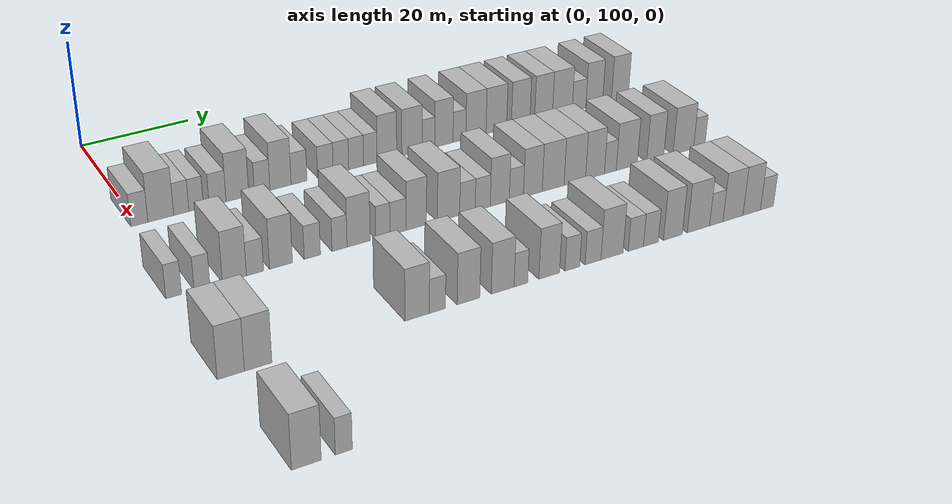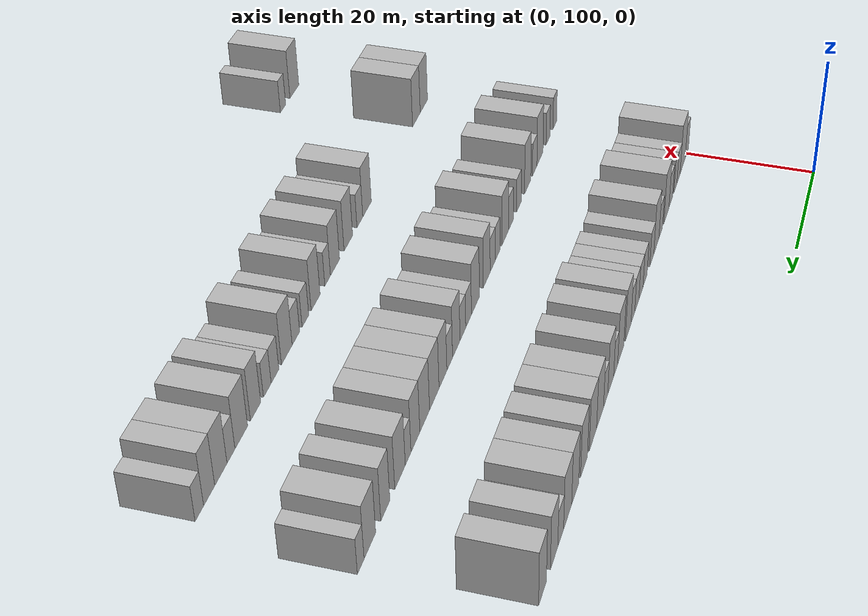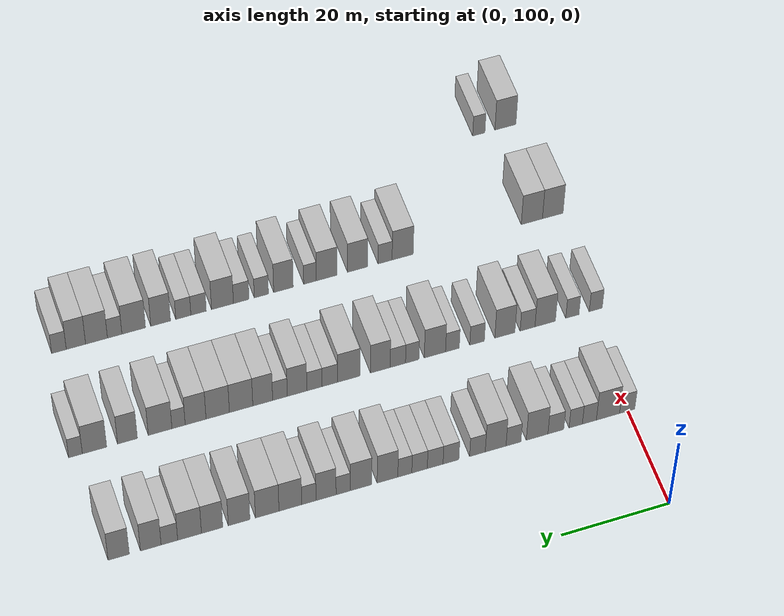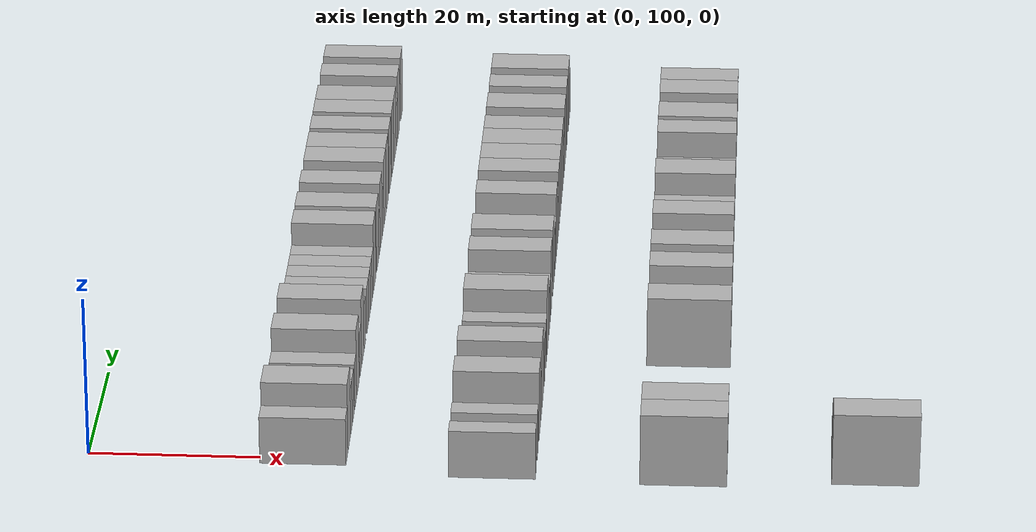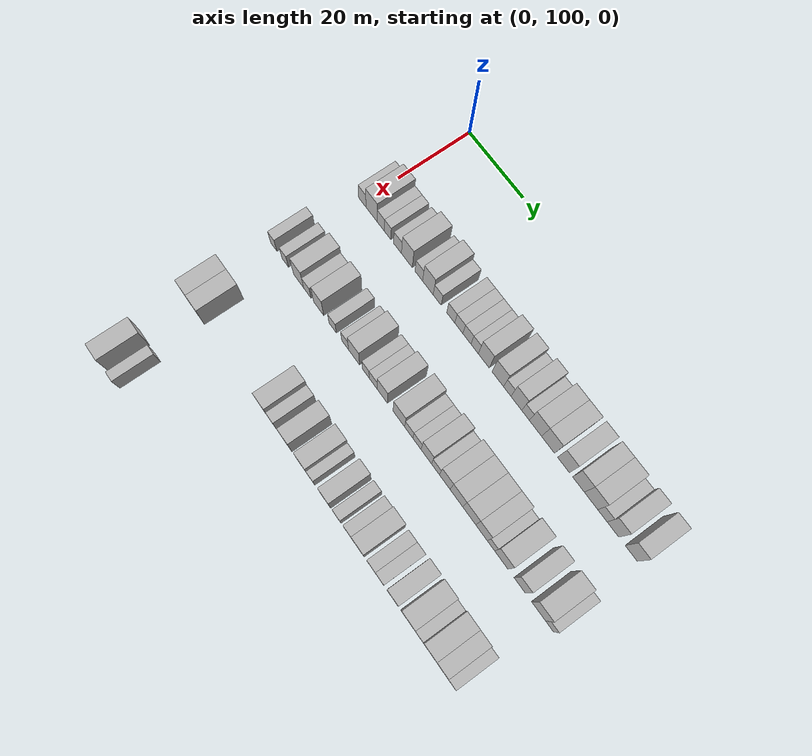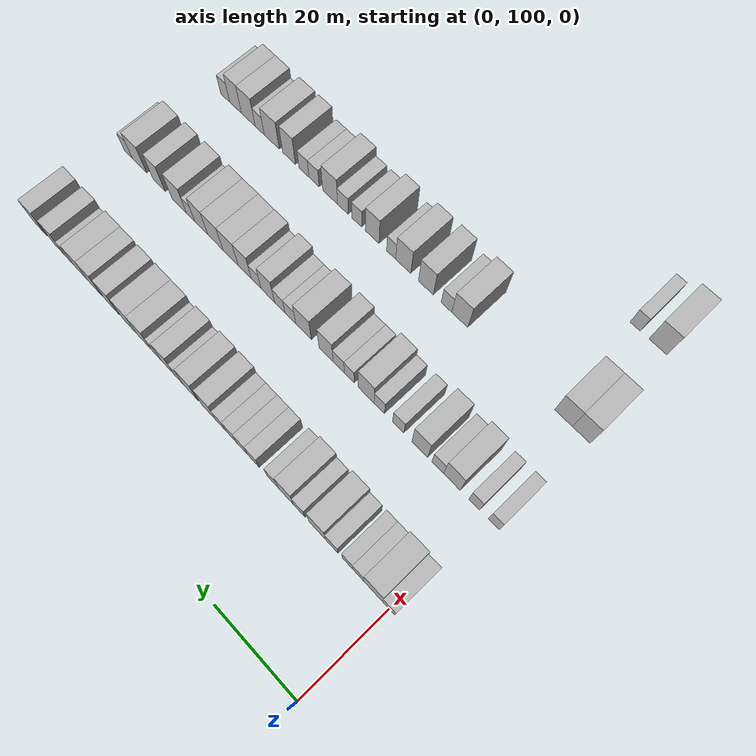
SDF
<sdf version="1.6">
 <world name="default">
  <model name="building_125">
   <static>1</static>
   <pose>25.0000 100.1451 0 0.000000 0.000000 0.000000</pose>
   <link name="link">
    <pose>0 0 3.00 0 0 0</pose>
    <collision name="collision"><geometry><box><size>10.0000 2.8913 6.0000</size></box></geometry></collision>
    <visual name="visual">
     <cast_shadows>0</cast_shadows>
     <geometry><box><size>10.0000 2.8913 6.0000</size></box></geometry>
     <material>
      <script>
       <uri>model://HANNAS_wall/materials/scripts</uri>
       <uri>model://HANNAS_wall/materials/textures</uri>
       <name>vrc/HANNAS_wall</name>
      </script>
     </material>
    </visual>
   </link>
  </model>
  <model name="building_126">
   <static>1</static>
   <pose>25.0000 103.7876 0 0.000000 0.000000 0.000000</pose>
   <link name="link">
    <pose>0 0 4.50 0 0 0</pose>
    <collision name="collision"><geometry><box><size>10.0000 4.3935 9.0000</size></box></geometry></collision>
    <visual name="visual">
     <cast_shadows>0</cast_shadows>
     <geometry><box><size>10.0000 4.3935 9.0000</size></box></geometry>
     <material>
      <script>
       <uri>model://HANNAS_wall/materials/scripts</uri>
       <uri>model://HANNAS_wall/materials/textures</uri>
       <name>vrc/HANNAS_wall</name>
      </script>
     </material>
    </visual>
   </link>
  </model>
  <model name="building_127">
   <static>1</static>
   <pose>25.0000 107.3071 0 0.000000 0.000000 0.000000</pose>
   <link name="link">
    <pose>0 0 3.00 0 0 0</pose>
    <collision name="collision"><geometry><box><size>10.0000 2.6456 6.0000</size></box></geometry></collision>
    <visual name="visual">
     <cast_shadows>0</cast_shadows>
     <geometry><box><size>10.0000 2.6456 6.0000</size></box></geometry>
     <material>
      <script>
       <uri>model://HANNAS_wall/materials/scripts</uri>
       <uri>model://HANNAS_wall/materials/textures</uri>
       <name>vrc/HANNAS_wall</name>
      </script>
     </material>
    </visual>
   </link>
  </model>
  <model name="building_128">
   <static>1</static>
   <pose>25.0000 109.8860 0 0.000000 0.000000 0.000000</pose>
   <link name="link">
    <pose>0 0 3.00 0 0 0</pose>
    <collision name="collision"><geometry><box><size>10.0000 2.5121 6.0000</size></box></geometry></collision>
    <visual name="visual">
     <cast_shadows>0</cast_shadows>
     <geometry><box><size>10.0000 2.5121 6.0000</size></box></geometry>
     <material>
      <script>
       <uri>model://HANNAS_wall/materials/scripts</uri>
       <uri>model://HANNAS_wall/materials/textures</uri>
       <name>vrc/HANNAS_wall</name>
      </script>
     </material>
    </visual>
   </link>
  </model>
  <model name="building_129">
   <static>1</static>
   <pose>25.0000 113.6311 0 0.000000 0.000000 0.000000</pose>
   <link name="link">
    <pose>0 0 3.00 0 0 0</pose>
    <collision name="collision"><geometry><box><size>10.0000 2.9781 6.0000</size></box></geometry></collision>
    <visual name="visual">
     <cast_shadows>0</cast_shadows>
     <geometry><box><size>10.0000 2.9781 6.0000</size></box></geometry>
     <material>
      <script>
       <uri>model://HANNAS_wall/materials/scripts</uri>
       <uri>model://HANNAS_wall/materials/textures</uri>
       <name>vrc/HANNAS_wall</name>
      </script>
     </material>
    </visual>
   </link>
  </model>
  <model name="building_130">
   <static>1</static>
   <pose>25.0000 117.1541 0 0.000000 0.000000 0.000000</pose>
   <link name="link">
    <pose>0 0 4.50 0 0 0</pose>
    <collision name="collision"><geometry><box><size>10.0000 4.0679 9.0000</size></box></geometry></collision>
    <visual name="visual">
     <cast_shadows>0</cast_shadows>
     <geometry><box><size>10.0000 4.0679 9.0000</size></box></geometry>
     <material>
      <script>
       <uri>model://HANNAS_wall/materials/scripts</uri>
       <uri>model://HANNAS_wall/materials/textures</uri>
       <name>vrc/HANNAS_wall</name>
      </script>
     </material>
    </visual>
   </link>
  </model>
  <model name="building_131">
   <static>1</static>
   <pose>25.0000 121.5856 0 0.000000 0.000000 0.000000</pose>
   <link name="link">
    <pose>0 0 3.00 0 0 0</pose>
    <collision name="collision"><geometry><box><size>10.0000 2.7949 6.0000</size></box></geometry></collision>
    <visual name="visual">
     <cast_shadows>0</cast_shadows>
     <geometry><box><size>10.0000 2.7949 6.0000</size></box></geometry>
     <material>
      <script>
       <uri>model://HANNAS_wall/materials/scripts</uri>
       <uri>model://HANNAS_wall/materials/textures</uri>
       <name>vrc/HANNAS_wall</name>
      </script>
     </material>
    </visual>
   </link>
  </model>
  <model name="building_132">
   <static>1</static>
   <pose>25.0000 124.9223 0 0.000000 0.000000 0.000000</pose>
   <link name="link">
    <pose>0 0 4.50 0 0 0</pose>
    <collision name="collision"><geometry><box><size>10.0000 3.8786 9.0000</size></box></geometry></collision>
    <visual name="visual">
     <cast_shadows>0</cast_shadows>
     <geometry><box><size>10.0000 3.8786 9.0000</size></box></geometry>
     <material>
      <script>
       <uri>model://HANNAS_wall/materials/scripts</uri>
       <uri>model://HANNAS_wall/materials/textures</uri>
       <name>vrc/HANNAS_wall</name>
      </script>
     </material>
    </visual>
   </link>
  </model>
  <model name="building_133">
   <static>1</static>
   <pose>25.0000 128.3234 0 0.000000 0.000000 0.000000</pose>
   <link name="link">
    <pose>0 0 3.00 0 0 0</pose>
    <collision name="collision"><geometry><box><size>10.0000 2.9236 6.0000</size></box></geometry></collision>
    <visual name="visual">
     <cast_shadows>0</cast_shadows>
     <geometry><box><size>10.0000 2.9236 6.0000</size></box></geometry>
     <material>
      <script>
       <uri>model://HANNAS_wall/materials/scripts</uri>
       <uri>model://HANNAS_wall/materials/textures</uri>
       <name>vrc/HANNAS_wall</name>
      </script>
     </material>
    </visual>
   </link>
  </model>
  <model name="building_134">
   <static>1</static>
   <pose>25.0000 133.2568 0 0.000000 0.000000 0.000000</pose>
   <link name="link">
    <pose>0 0 3.00 0 0 0</pose>
    <collision name="collision"><geometry><box><size>10.0000 2.9431 6.0000</size></box></geometry></collision>
    <visual name="visual">
     <cast_shadows>0</cast_shadows>
     <geometry><box><size>10.0000 2.9431 6.0000</size></box></geometry>
     <material>
      <script>
       <uri>model://HANNAS_wall/materials/scripts</uri>
       <uri>model://HANNAS_wall/materials/textures</uri>
       <name>vrc/HANNAS_wall</name>
      </script>
     </material>
    </visual>
   </link>
  </model>
  <model name="building_135">
   <static>1</static>
   <pose>25.0000 136.1904 0 0.000000 0.000000 0.000000</pose>
   <link name="link">
    <pose>0 0 3.00 0 0 0</pose>
    <collision name="collision"><geometry><box><size>10.0000 2.9241 6.0000</size></box></geometry></collision>
    <visual name="visual">
     <cast_shadows>0</cast_shadows>
     <geometry><box><size>10.0000 2.9241 6.0000</size></box></geometry>
     <material>
      <script>
       <uri>model://HANNAS_wall/materials/scripts</uri>
       <uri>model://HANNAS_wall/materials/textures</uri>
       <name>vrc/HANNAS_wall</name>
      </script>
     </material>
    </visual>
   </link>
  </model>
  <model name="building_136">
   <static>1</static>
   <pose>25.0000 139.0863 0 0.000000 0.000000 0.000000</pose>
   <link name="link">
    <pose>0 0 3.00 0 0 0</pose>
    <collision name="collision"><geometry><box><size>10.0000 2.8677 6.0000</size></box></geometry></collision>
    <visual name="visual">
     <cast_shadows>0</cast_shadows>
     <geometry><box><size>10.0000 2.8677 6.0000</size></box></geometry>
     <material>
      <script>
       <uri>model://HANNAS_wall/materials/scripts</uri>
       <uri>model://HANNAS_wall/materials/textures</uri>
       <name>vrc/HANNAS_wall</name>
      </script>
     </material>
    </visual>
   </link>
  </model>
  <model name="building_137">
   <static>1</static>
   <pose>25.0000 141.8139 0 0.000000 0.000000 0.000000</pose>
   <link name="link">
    <pose>0 0 3.00 0 0 0</pose>
    <collision name="collision"><geometry><box><size>10.0000 2.5877 6.0000</size></box></geometry></collision>
    <visual name="visual">
     <cast_shadows>0</cast_shadows>
     <geometry><box><size>10.0000 2.5877 6.0000</size></box></geometry>
     <material>
      <script>
       <uri>model://HANNAS_wall/materials/scripts</uri>
       <uri>model://HANNAS_wall/materials/textures</uri>
       <name>vrc/HANNAS_wall</name>
      </script>
     </material>
    </visual>
   </link>
  </model>
  <model name="building_138">
   <static>1</static>
   <pose>25.0000 145.0215 0 0.000000 0.000000 0.000000</pose>
   <link name="link">
    <pose>0 0 4.50 0 0 0</pose>
    <collision name="collision"><geometry><box><size>10.0000 3.8276 9.0000</size></box></geometry></collision>
    <visual name="visual">
     <cast_shadows>0</cast_shadows>
     <geometry><box><size>10.0000 3.8276 9.0000</size></box></geometry>
     <material>
      <script>
       <uri>model://HANNAS_wall/materials/scripts</uri>
       <uri>model://HANNAS_wall/materials/textures</uri>
       <name>vrc/HANNAS_wall</name>
      </script>
     </material>
    </visual>
   </link>
  </model>
  <model name="building_139">
   <static>1</static>
   <pose>25.0000 149.9324 0 0.000000 0.000000 0.000000</pose>
   <link name="link">
    <pose>0 0 4.50 0 0 0</pose>
    <collision name="collision"><geometry><box><size>10.0000 3.9941 9.0000</size></box></geometry></collision>
    <visual name="visual">
     <cast_shadows>0</cast_shadows>
     <geometry><box><size>10.0000 3.9941 9.0000</size></box></geometry>
     <material>
      <script>
       <uri>model://HANNAS_wall/materials/scripts</uri>
       <uri>model://HANNAS_wall/materials/textures</uri>
       <name>vrc/HANNAS_wall</name>
      </script>
     </material>
    </visual>
   </link>
  </model>
  <model name="building_140">
   <static>1</static>
   <pose>25.0000 153.2054 0 0.000000 0.000000 0.000000</pose>
   <link name="link">
    <pose>0 0 3.00 0 0 0</pose>
    <collision name="collision"><geometry><box><size>10.0000 2.5519 6.0000</size></box></geometry></collision>
    <visual name="visual">
     <cast_shadows>0</cast_shadows>
     <geometry><box><size>10.0000 2.5519 6.0000</size></box></geometry>
     <material>
      <script>
       <uri>model://HANNAS_wall/materials/scripts</uri>
       <uri>model://HANNAS_wall/materials/textures</uri>
       <name>vrc/HANNAS_wall</name>
      </script>
     </material>
    </visual>
   </link>
  </model>
  <model name="building_141">
   <static>1</static>
   <pose>25.0000 156.3210 0 0.000000 0.000000 0.000000</pose>
   <link name="link">
    <pose>0 0 4.50 0 0 0</pose>
    <collision name="collision"><geometry><box><size>10.0000 3.6792 9.0000</size></box></geometry></collision>
    <visual name="visual">
     <cast_shadows>0</cast_shadows>
     <geometry><box><size>10.0000 3.6792 9.0000</size></box></geometry>
     <material>
      <script>
       <uri>model://HANNAS_wall/materials/scripts</uri>
       <uri>model://HANNAS_wall/materials/textures</uri>
       <name>vrc/HANNAS_wall</name>
      </script>
     </material>
    </visual>
   </link>
  </model>
  <model name="building_142">
   <static>1</static>
   <pose>25.0000 159.4684 0 0.000000 0.000000 0.000000</pose>
   <link name="link">
    <pose>0 0 3.00 0 0 0</pose>
    <collision name="collision"><geometry><box><size>10.0000 2.6157 6.0000</size></box></geometry></collision>
    <visual name="visual">
     <cast_shadows>0</cast_shadows>
     <geometry><box><size>10.0000 2.6157 6.0000</size></box></geometry>
     <material>
      <script>
       <uri>model://HANNAS_wall/materials/scripts</uri>
       <uri>model://HANNAS_wall/materials/textures</uri>
       <name>vrc/HANNAS_wall</name>
      </script>
     </material>
    </visual>
   </link>
  </model>
  <model name="building_143">
   <static>1</static>
   <pose>25.0000 162.8540 0 0.000000 0.000000 0.000000</pose>
   <link name="link">
    <pose>0 0 4.50 0 0 0</pose>
    <collision name="collision"><geometry><box><size>10.0000 4.1554 9.0000</size></box></geometry></collision>
    <visual name="visual">
     <cast_shadows>0</cast_shadows>
     <geometry><box><size>10.0000 4.1554 9.0000</size></box></geometry>
     <material>
      <script>
       <uri>model://HANNAS_wall/materials/scripts</uri>
       <uri>model://HANNAS_wall/materials/textures</uri>
       <name>vrc/HANNAS_wall</name>
      </script>
     </material>
    </visual>
   </link>
  </model>
  <model name="building_144">
   <static>1</static>
   <pose>25.0000 167.0767 0 0.000000 0.000000 0.000000</pose>
   <link name="link">
    <pose>0 0 4.50 0 0 0</pose>
    <collision name="collision"><geometry><box><size>10.0000 4.2901 9.0000</size></box></geometry></collision>
    <visual name="visual">
     <cast_shadows>0</cast_shadows>
     <geometry><box><size>10.0000 4.2901 9.0000</size></box></geometry>
     <material>
      <script>
       <uri>model://HANNAS_wall/materials/scripts</uri>
       <uri>model://HANNAS_wall/materials/textures</uri>
       <name>vrc/HANNAS_wall</name>
      </script>
     </material>
    </visual>
   </link>
  </model>
  <model name="building_145">
   <static>1</static>
   <pose>25.0000 172.1859 0 0.000000 0.000000 0.000000</pose>
   <link name="link">
    <pose>0 0 4.50 0 0 0</pose>
    <collision name="collision"><geometry><box><size>10.0000 3.9281 9.0000</size></box></geometry></collision>
    <visual name="visual">
     <cast_shadows>0</cast_shadows>
     <geometry><box><size>10.0000 3.9281 9.0000</size></box></geometry>
     <material>
      <script>
       <uri>model://HANNAS_wall/materials/scripts</uri>
       <uri>model://HANNAS_wall/materials/textures</uri>
       <name>vrc/HANNAS_wall</name>
      </script>
     </material>
    </visual>
   </link>
  </model>
  <model name="building_146">
   <static>1</static>
   <pose>25.0000 177.0750 0 0.000000 0.000000 0.000000</pose>
   <link name="link">
    <pose>0 0 4.50 0 0 0</pose>
    <collision name="collision"><geometry><box><size>10.0000 3.8501 9.0000</size></box></geometry></collision>
    <visual name="visual">
     <cast_shadows>0</cast_shadows>
     <geometry><box><size>10.0000 3.8501 9.0000</size></box></geometry>
     <material>
      <script>
       <uri>model://HANNAS_wall/materials/scripts</uri>
       <uri>model://HANNAS_wall/materials/textures</uri>
       <name>vrc/HANNAS_wall</name>
      </script>
     </material>
    </visual>
   </link>
  </model>
  <model name="building_147">
   <static>1</static>
   <pose>25.0000 181.1500 0 0.000000 0.000000 0.000000</pose>
   <link name="link">
    <pose>0 0 4.50 0 0 0</pose>
    <collision name="collision"><geometry><box><size>10.0000 4.3000 9.0000</size></box></geometry></collision>
    <visual name="visual">
     <cast_shadows>0</cast_shadows>
     <geometry><box><size>10.0000 4.3000 9.0000</size></box></geometry>
     <material>
      <script>
       <uri>model://HANNAS_wall/materials/scripts</uri>
       <uri>model://HANNAS_wall/materials/textures</uri>
       <name>vrc/HANNAS_wall</name>
      </script>
     </material>
    </visual>
   </link>
  </model>
  <model name="building_148">
   <static>1</static>
   <pose>25.0000 184.7930 0 0.000000 0.000000 0.000000</pose>
   <link name="link">
    <pose>0 0 3.00 0 0 0</pose>
    <collision name="collision"><geometry><box><size>10.0000 2.9859 6.0000</size></box></geometry></collision>
    <visual name="visual">
     <cast_shadows>0</cast_shadows>
     <geometry><box><size>10.0000 2.9859 6.0000</size></box></geometry>
     <material>
      <script>
       <uri>model://HANNAS_wall/materials/scripts</uri>
       <uri>model://HANNAS_wall/materials/textures</uri>
       <name>vrc/HANNAS_wall</name>
      </script>
     </material>
    </visual>
   </link>
  </model>
  <model name="building_149">
   <static>1</static>
   <pose>25.0000 188.1437 0 0.000000 0.000000 0.000000</pose>
   <link name="link">
    <pose>0 0 4.50 0 0 0</pose>
    <collision name="collision"><geometry><box><size>10.0000 3.7155 9.0000</size></box></geometry></collision>
    <visual name="visual">
     <cast_shadows>0</cast_shadows>
     <geometry><box><size>10.0000 3.7155 9.0000</size></box></geometry>
     <material>
      <script>
       <uri>model://HANNAS_wall/materials/scripts</uri>
       <uri>model://HANNAS_wall/materials/textures</uri>
       <name>vrc/HANNAS_wall</name>
      </script>
     </material>
    </visual>
   </link>
  </model>
  <model name="building_150">
   <static>1</static>
   <pose>25.0000 193.9039 0 0.000000 0.000000 0.000000</pose>
   <link name="link">
    <pose>0 0 4.50 0 0 0</pose>
    <collision name="collision"><geometry><box><size>10.0000 3.8047 9.0000</size></box></geometry></collision>
    <visual name="visual">
     <cast_shadows>0</cast_shadows>
     <geometry><box><size>10.0000 3.8047 9.0000</size></box></geometry>
     <material>
      <script>
       <uri>model://HANNAS_wall/materials/scripts</uri>
       <uri>model://HANNAS_wall/materials/textures</uri>
       <name>vrc/HANNAS_wall</name>
      </script>
     </material>
    </visual>
   </link>
  </model>
  <model name="building_324">
   <static>1</static>
   <pose>47.0000 97.7216 0 0.000000 0.000000 0.000000</pose>
   <link name="link">
    <pose>0 0 3.00 0 0 0</pose>
    <collision name="collision"><geometry><box><size>10.0000 2.5091 6.0000</size></box></geometry></collision>
    <visual name="visual">
     <cast_shadows>0</cast_shadows>
     <geometry><box><size>10.0000 2.5091 6.0000</size></box></geometry>
     <material>
      <script>
       <uri>model://HANNAS_wall/materials/scripts</uri>
       <uri>model://HANNAS_wall/materials/textures</uri>
       <name>vrc/HANNAS_wall</name>
      </script>
     </material>
    </visual>
   </link>
  </model>
  <model name="building_325">
   <static>1</static>
   <pose>47.0000 102.2437 0 0.000000 0.000000 0.000000</pose>
   <link name="link">
    <pose>0 0 3.00 0 0 0</pose>
    <collision name="collision"><geometry><box><size>10.0000 2.5351 6.0000</size></box></geometry></collision>
    <visual name="visual">
     <cast_shadows>0</cast_shadows>
     <geometry><box><size>10.0000 2.5351 6.0000</size></box></geometry>
     <material>
      <script>
       <uri>model://HANNAS_wall/materials/scripts</uri>
       <uri>model://HANNAS_wall/materials/textures</uri>
       <name>vrc/HANNAS_wall</name>
      </script>
     </material>
    </visual>
   </link>
  </model>
  <model name="building_326">
   <static>1</static>
   <pose>47.0000 107.4772 0 0.000000 0.000000 0.000000</pose>
   <link name="link">
    <pose>0 0 4.50 0 0 0</pose>
    <collision name="collision"><geometry><box><size>10.0000 3.9320 9.0000</size></box></geometry></collision>
    <visual name="visual">
     <cast_shadows>0</cast_shadows>
     <geometry><box><size>10.0000 3.9320 9.0000</size></box></geometry>
     <material>
      <script>
       <uri>model://HANNAS_wall/materials/scripts</uri>
       <uri>model://HANNAS_wall/materials/textures</uri>
       <name>vrc/HANNAS_wall</name>
      </script>
     </material>
    </visual>
   </link>
  </model>
  <model name="building_327">
   <static>1</static>
   <pose>47.0000 110.8679 0 0.000000 0.000000 0.000000</pose>
   <link name="link">
    <pose>0 0 3.00 0 0 0</pose>
    <collision name="collision"><geometry><box><size>10.0000 2.8495 6.0000</size></box></geometry></collision>
    <visual name="visual">
     <cast_shadows>0</cast_shadows>
     <geometry><box><size>10.0000 2.8495 6.0000</size></box></geometry>
     <material>
      <script>
       <uri>model://HANNAS_wall/materials/scripts</uri>
       <uri>model://HANNAS_wall/materials/textures</uri>
       <name>vrc/HANNAS_wall</name>
      </script>
     </material>
    </visual>
   </link>
  </model>
  <model name="building_328">
   <static>1</static>
   <pose>47.0000 115.2142 0 0.000000 0.000000 0.000000</pose>
   <link name="link">
    <pose>0 0 4.50 0 0 0</pose>
    <collision name="collision"><geometry><box><size>10.0000 3.8431 9.0000</size></box></geometry></collision>
    <visual name="visual">
     <cast_shadows>0</cast_shadows>
     <geometry><box><size>10.0000 3.8431 9.0000</size></box></geometry>
     <material>
      <script>
       <uri>model://HANNAS_wall/materials/scripts</uri>
       <uri>model://HANNAS_wall/materials/textures</uri>
       <name>vrc/HANNAS_wall</name>
      </script>
     </material>
    </visual>
   </link>
  </model>
  <model name="building_329">
   <static>1</static>
   <pose>47.0000 120.5271 0 0.000000 0.000000 0.000000</pose>
   <link name="link">
    <pose>0 0 3.00 0 0 0</pose>
    <collision name="collision"><geometry><box><size>10.0000 2.7827 6.0000</size></box></geometry></collision>
    <visual name="visual">
     <cast_shadows>0</cast_shadows>
     <geometry><box><size>10.0000 2.7827 6.0000</size></box></geometry>
     <material>
      <script>
       <uri>model://HANNAS_wall/materials/scripts</uri>
       <uri>model://HANNAS_wall/materials/textures</uri>
       <name>vrc/HANNAS_wall</name>
      </script>
     </material>
    </visual>
   </link>
  </model>
  <model name="building_330">
   <static>1</static>
   <pose>47.0000 125.2249 0 0.000000 0.000000 0.000000</pose>
   <link name="link">
    <pose>0 0 3.00 0 0 0</pose>
    <collision name="collision"><geometry><box><size>10.0000 2.6129 6.0000</size></box></geometry></collision>
    <visual name="visual">
     <cast_shadows>0</cast_shadows>
     <geometry><box><size>10.0000 2.6129 6.0000</size></box></geometry>
     <material>
      <script>
       <uri>model://HANNAS_wall/materials/scripts</uri>
       <uri>model://HANNAS_wall/materials/textures</uri>
       <name>vrc/HANNAS_wall</name>
      </script>
     </material>
    </visual>
   </link>
  </model>
  <model name="building_331">
   <static>1</static>
   <pose>47.0000 128.5559 0 0.000000 0.000000 0.000000</pose>
   <link name="link">
    <pose>0 0 4.50 0 0 0</pose>
    <collision name="collision"><geometry><box><size>10.0000 4.0492 9.0000</size></box></geometry></collision>
    <visual name="visual">
     <cast_shadows>0</cast_shadows>
     <geometry><box><size>10.0000 4.0492 9.0000</size></box></geometry>
     <material>
      <script>
       <uri>model://HANNAS_wall/materials/scripts</uri>
       <uri>model://HANNAS_wall/materials/textures</uri>
       <name>vrc/HANNAS_wall</name>
      </script>
     </material>
    </visual>
   </link>
  </model>
  <model name="building_332">
   <static>1</static>
   <pose>47.0000 132.8507 0 0.000000 0.000000 0.000000</pose>
   <link name="link">
    <pose>0 0 3.00 0 0 0</pose>
    <collision name="collision"><geometry><box><size>10.0000 2.5404 6.0000</size></box></geometry></collision>
    <visual name="visual">
     <cast_shadows>0</cast_shadows>
     <geometry><box><size>10.0000 2.5404 6.0000</size></box></geometry>
     <material>
      <script>
       <uri>model://HANNAS_wall/materials/scripts</uri>
       <uri>model://HANNAS_wall/materials/textures</uri>
       <name>vrc/HANNAS_wall</name>
      </script>
     </material>
    </visual>
   </link>
  </model>
  <model name="building_333">
   <static>1</static>
   <pose>47.0000 135.5722 0 0.000000 0.000000 0.000000</pose>
   <link name="link">
    <pose>0 0 3.00 0 0 0</pose>
    <collision name="collision"><geometry><box><size>10.0000 2.9024 6.0000</size></box></geometry></collision>
    <visual name="visual">
     <cast_shadows>0</cast_shadows>
     <geometry><box><size>10.0000 2.9024 6.0000</size></box></geometry>
     <material>
      <script>
       <uri>model://HANNAS_wall/materials/scripts</uri>
       <uri>model://HANNAS_wall/materials/textures</uri>
       <name>vrc/HANNAS_wall</name>
      </script>
     </material>
    </visual>
   </link>
  </model>
  <model name="building_334">
   <static>1</static>
   <pose>47.0000 138.8837 0 0.000000 0.000000 0.000000</pose>
   <link name="link">
    <pose>0 0 4.50 0 0 0</pose>
    <collision name="collision"><geometry><box><size>10.0000 3.7206 9.0000</size></box></geometry></collision>
    <visual name="visual">
     <cast_shadows>0</cast_shadows>
     <geometry><box><size>10.0000 3.7206 9.0000</size></box></geometry>
     <material>
      <script>
       <uri>model://HANNAS_wall/materials/scripts</uri>
       <uri>model://HANNAS_wall/materials/textures</uri>
       <name>vrc/HANNAS_wall</name>
      </script>
     </material>
    </visual>
   </link>
  </model>
  <model name="building_335">
   <static>1</static>
   <pose>47.0000 144.8325 0 0.000000 0.000000 0.000000</pose>
   <link name="link">
    <pose>0 0 4.50 0 0 0</pose>
    <collision name="collision"><geometry><box><size>10.0000 4.1771 9.0000</size></box></geometry></collision>
    <visual name="visual">
     <cast_shadows>0</cast_shadows>
     <geometry><box><size>10.0000 4.1771 9.0000</size></box></geometry>
     <material>
      <script>
       <uri>model://HANNAS_wall/materials/scripts</uri>
       <uri>model://HANNAS_wall/materials/textures</uri>
       <name>vrc/HANNAS_wall</name>
      </script>
     </material>
    </visual>
   </link>
  </model>
  <model name="building_336">
   <static>1</static>
   <pose>47.0000 148.3707 0 0.000000 0.000000 0.000000</pose>
   <link name="link">
    <pose>0 0 3.00 0 0 0</pose>
    <collision name="collision"><geometry><box><size>10.0000 2.8993 6.0000</size></box></geometry></collision>
    <visual name="visual">
     <cast_shadows>0</cast_shadows>
     <geometry><box><size>10.0000 2.8993 6.0000</size></box></geometry>
     <material>
      <script>
       <uri>model://HANNAS_wall/materials/scripts</uri>
       <uri>model://HANNAS_wall/materials/textures</uri>
       <name>vrc/HANNAS_wall</name>
      </script>
     </material>
    </visual>
   </link>
  </model>
  <model name="building_337">
   <static>1</static>
   <pose>47.0000 151.2532 0 0.000000 0.000000 0.000000</pose>
   <link name="link">
    <pose>0 0 3.00 0 0 0</pose>
    <collision name="collision"><geometry><box><size>10.0000 2.8657 6.0000</size></box></geometry></collision>
    <visual name="visual">
     <cast_shadows>0</cast_shadows>
     <geometry><box><size>10.0000 2.8657 6.0000</size></box></geometry>
     <material>
      <script>
       <uri>model://HANNAS_wall/materials/scripts</uri>
       <uri>model://HANNAS_wall/materials/textures</uri>
       <name>vrc/HANNAS_wall</name>
      </script>
     </material>
    </visual>
   </link>
  </model>
  <model name="building_338">
   <static>1</static>
   <pose>47.0000 154.5150 0 0.000000 0.000000 0.000000</pose>
   <link name="link">
    <pose>0 0 4.50 0 0 0</pose>
    <collision name="collision"><geometry><box><size>10.0000 3.6580 9.0000</size></box></geometry></collision>
    <visual name="visual">
     <cast_shadows>0</cast_shadows>
     <geometry><box><size>10.0000 3.6580 9.0000</size></box></geometry>
     <material>
      <script>
       <uri>model://HANNAS_wall/materials/scripts</uri>
       <uri>model://HANNAS_wall/materials/textures</uri>
       <name>vrc/HANNAS_wall</name>
      </script>
     </material>
    </visual>
   </link>
  </model>
  <model name="building_339">
   <static>1</static>
   <pose>47.0000 157.7086 0 0.000000 0.000000 0.000000</pose>
   <link name="link">
    <pose>0 0 3.00 0 0 0</pose>
    <collision name="collision"><geometry><box><size>10.0000 2.7291 6.0000</size></box></geometry></collision>
    <visual name="visual">
     <cast_shadows>0</cast_shadows>
     <geometry><box><size>10.0000 2.7291 6.0000</size></box></geometry>
     <material>
      <script>
       <uri>model://HANNAS_wall/materials/scripts</uri>
       <uri>model://HANNAS_wall/materials/textures</uri>
       <name>vrc/HANNAS_wall</name>
      </script>
     </material>
    </visual>
   </link>
  </model>
  <model name="building_340">
   <static>1</static>
   <pose>47.0000 160.9173 0 0.000000 0.000000 0.000000</pose>
   <link name="link">
    <pose>0 0 4.50 0 0 0</pose>
    <collision name="collision"><geometry><box><size>10.0000 3.6883 9.0000</size></box></geometry></collision>
    <visual name="visual">
     <cast_shadows>0</cast_shadows>
     <geometry><box><size>10.0000 3.6883 9.0000</size></box></geometry>
     <material>
      <script>
       <uri>model://HANNAS_wall/materials/scripts</uri>
       <uri>model://HANNAS_wall/materials/textures</uri>
       <name>vrc/HANNAS_wall</name>
      </script>
     </material>
    </visual>
   </link>
  </model>
  <model name="building_341">
   <static>1</static>
   <pose>47.0000 164.9379 0 0.000000 0.000000 0.000000</pose>
   <link name="link">
    <pose>0 0 4.50 0 0 0</pose>
    <collision name="collision"><geometry><box><size>10.0000 4.3529 9.0000</size></box></geometry></collision>
    <visual name="visual">
     <cast_shadows>0</cast_shadows>
     <geometry><box><size>10.0000 4.3529 9.0000</size></box></geometry>
     <material>
      <script>
       <uri>model://HANNAS_wall/materials/scripts</uri>
       <uri>model://HANNAS_wall/materials/textures</uri>
       <name>vrc/HANNAS_wall</name>
      </script>
     </material>
    </visual>
   </link>
  </model>
  <model name="building_342">
   <static>1</static>
   <pose>47.0000 169.2799 0 0.000000 0.000000 0.000000</pose>
   <link name="link">
    <pose>0 0 4.50 0 0 0</pose>
    <collision name="collision"><geometry><box><size>10.0000 4.3310 9.0000</size></box></geometry></collision>
    <visual name="visual">
     <cast_shadows>0</cast_shadows>
     <geometry><box><size>10.0000 4.3310 9.0000</size></box></geometry>
     <material>
      <script>
       <uri>model://HANNAS_wall/materials/scripts</uri>
       <uri>model://HANNAS_wall/materials/textures</uri>
       <name>vrc/HANNAS_wall</name>
      </script>
     </material>
    </visual>
   </link>
  </model>
  <model name="building_343">
   <static>1</static>
   <pose>47.0000 173.3694 0 0.000000 0.000000 0.000000</pose>
   <link name="link">
    <pose>0 0 4.50 0 0 0</pose>
    <collision name="collision"><geometry><box><size>10.0000 3.8481 9.0000</size></box></geometry></collision>
    <visual name="visual">
     <cast_shadows>0</cast_shadows>
     <geometry><box><size>10.0000 3.8481 9.0000</size></box></geometry>
     <material>
      <script>
       <uri>model://HANNAS_wall/materials/scripts</uri>
       <uri>model://HANNAS_wall/materials/textures</uri>
       <name>vrc/HANNAS_wall</name>
      </script>
     </material>
    </visual>
   </link>
  </model>
  <model name="building_344">
   <static>1</static>
   <pose>47.0000 176.5124 0 0.000000 0.000000 0.000000</pose>
   <link name="link">
    <pose>0 0 3.00 0 0 0</pose>
    <collision name="collision"><geometry><box><size>10.0000 2.4378 6.0000</size></box></geometry></collision>
    <visual name="visual">
     <cast_shadows>0</cast_shadows>
     <geometry><box><size>10.0000 2.4378 6.0000</size></box></geometry>
     <material>
      <script>
       <uri>model://HANNAS_wall/materials/scripts</uri>
       <uri>model://HANNAS_wall/materials/textures</uri>
       <name>vrc/HANNAS_wall</name>
      </script>
     </material>
    </visual>
   </link>
  </model>
  <model name="building_345">
   <static>1</static>
   <pose>47.0000 179.9125 0 0.000000 0.000000 0.000000</pose>
   <link name="link">
    <pose>0 0 4.50 0 0 0</pose>
    <collision name="collision"><geometry><box><size>10.0000 4.3626 9.0000</size></box></geometry></collision>
    <visual name="visual">
     <cast_shadows>0</cast_shadows>
     <geometry><box><size>10.0000 4.3626 9.0000</size></box></geometry>
     <material>
      <script>
       <uri>model://HANNAS_wall/materials/scripts</uri>
       <uri>model://HANNAS_wall/materials/textures</uri>
       <name>vrc/HANNAS_wall</name>
      </script>
     </material>
    </visual>
   </link>
  </model>
  <model name="building_346">
   <static>1</static>
   <pose>47.0000 185.9075 0 0.000000 0.000000 0.000000</pose>
   <link name="link">
    <pose>0 0 4.50 0 0 0</pose>
    <collision name="collision"><geometry><box><size>10.0000 3.6273 9.0000</size></box></geometry></collision>
    <visual name="visual">
     <cast_shadows>0</cast_shadows>
     <geometry><box><size>10.0000 3.6273 9.0000</size></box></geometry>
     <material>
      <script>
       <uri>model://HANNAS_wall/materials/scripts</uri>
       <uri>model://HANNAS_wall/materials/textures</uri>
       <name>vrc/HANNAS_wall</name>
      </script>
     </material>
    </visual>
   </link>
  </model>
  <model name="building_347">
   <static>1</static>
   <pose>47.0000 191.9389 0 0.000000 0.000000 0.000000</pose>
   <link name="link">
    <pose>0 0 4.50 0 0 0</pose>
    <collision name="collision"><geometry><box><size>10.0000 4.4355 9.0000</size></box></geometry></collision>
    <visual name="visual">
     <cast_shadows>0</cast_shadows>
     <geometry><box><size>10.0000 4.4355 9.0000</size></box></geometry>
     <material>
      <script>
       <uri>model://HANNAS_wall/materials/scripts</uri>
       <uri>model://HANNAS_wall/materials/textures</uri>
       <name>vrc/HANNAS_wall</name>
      </script>
     </material>
    </visual>
   </link>
  </model>
  <model name="building_348">
   <static>1</static>
   <pose>47.0000 195.4101 0 0.000000 0.000000 0.000000</pose>
   <link name="link">
    <pose>0 0 3.00 0 0 0</pose>
    <collision name="collision"><geometry><box><size>10.0000 2.5068 6.0000</size></box></geometry></collision>
    <visual name="visual">
     <cast_shadows>0</cast_shadows>
     <geometry><box><size>10.0000 2.5068 6.0000</size></box></geometry>
     <material>
      <script>
       <uri>model://HANNAS_wall/materials/scripts</uri>
       <uri>model://HANNAS_wall/materials/textures</uri>
       <name>vrc/HANNAS_wall</name>
      </script>
     </material>
    </visual>
   </link>
  </model>
  <model name="building_516">
   <static>1</static>
   <pose>69.0000 97.8265 0 0.000000 0.000000 0.000000</pose>
   <link name="link">
    <pose>0 0 4.50 0 0 0</pose>
    <collision name="collision"><geometry><box><size>10.0000 4.0490 9.0000</size></box></geometry></collision>
    <visual name="visual">
     <cast_shadows>0</cast_shadows>
     <geometry><box><size>10.0000 4.0490 9.0000</size></box></geometry>
     <material>
      <script>
       <uri>model://HANNAS_wall/materials/scripts</uri>
       <uri>model://HANNAS_wall/materials/textures</uri>
       <name>vrc/HANNAS_wall</name>
      </script>
     </material>
    </visual>
   </link>
  </model>
  <model name="building_517">
   <static>1</static>
   <pose>69.0000 101.9319 0 0.000000 0.000000 0.000000</pose>
   <link name="link">
    <pose>0 0 4.50 0 0 0</pose>
    <collision name="collision"><geometry><box><size>10.0000 4.1618 9.0000</size></box></geometry></collision>
    <visual name="visual">
     <cast_shadows>0</cast_shadows>
     <geometry><box><size>10.0000 4.1618 9.0000</size></box></geometry>
     <material>
      <script>
       <uri>model://HANNAS_wall/materials/scripts</uri>
       <uri>model://HANNAS_wall/materials/textures</uri>
       <name>vrc/HANNAS_wall</name>
      </script>
     </material>
    </visual>
   </link>
  </model>
  <model name="building_518">
   <static>1</static>
   <pose>69.0000 127.1165 0 0.000000 0.000000 0.000000</pose>
   <link name="link">
    <pose>0 0 4.50 0 0 0</pose>
    <collision name="collision"><geometry><box><size>10.0000 4.0691 9.0000</size></box></geometry></collision>
    <visual name="visual">
     <cast_shadows>0</cast_shadows>
     <geometry><box><size>10.0000 4.0691 9.0000</size></box></geometry>
     <material>
      <script>
       <uri>model://HANNAS_wall/materials/scripts</uri>
       <uri>model://HANNAS_wall/materials/textures</uri>
       <name>vrc/HANNAS_wall</name>
      </script>
     </material>
    </visual>
   </link>
  </model>
  <model name="building_519">
   <static>1</static>
   <pose>69.0000 130.5032 0 0.000000 0.000000 0.000000</pose>
   <link name="link">
    <pose>0 0 3.00 0 0 0</pose>
    <collision name="collision"><geometry><box><size>10.0000 2.7044 6.0000</size></box></geometry></collision>
    <visual name="visual">
     <cast_shadows>0</cast_shadows>
     <geometry><box><size>10.0000 2.7044 6.0000</size></box></geometry>
     <material>
      <script>
       <uri>model://HANNAS_wall/materials/scripts</uri>
       <uri>model://HANNAS_wall/materials/textures</uri>
       <name>vrc/HANNAS_wall</name>
      </script>
     </material>
    </visual>
   </link>
  </model>
  <model name="building_520">
   <static>1</static>
   <pose>69.0000 135.7906 0 0.000000 0.000000 0.000000</pose>
   <link name="link">
    <pose>0 0 4.50 0 0 0</pose>
    <collision name="collision"><geometry><box><size>10.0000 3.8703 9.0000</size></box></geometry></collision>
    <visual name="visual">
     <cast_shadows>0</cast_shadows>
     <geometry><box><size>10.0000 3.8703 9.0000</size></box></geometry>
     <material>
      <script>
       <uri>model://HANNAS_wall/materials/scripts</uri>
       <uri>model://HANNAS_wall/materials/textures</uri>
       <name>vrc/HANNAS_wall</name>
      </script>
     </material>
    </visual>
   </link>
  </model>
  <model name="building_521">
   <static>1</static>
   <pose>69.0000 141.7249 0 0.000000 0.000000 0.000000</pose>
   <link name="link">
    <pose>0 0 4.50 0 0 0</pose>
    <collision name="collision"><geometry><box><size>10.0000 3.9984 9.0000</size></box></geometry></collision>
    <visual name="visual">
     <cast_shadows>0</cast_shadows>
     <geometry><box><size>10.0000 3.9984 9.0000</size></box></geometry>
     <material>
      <script>
       <uri>model://HANNAS_wall/materials/scripts</uri>
       <uri>model://HANNAS_wall/materials/textures</uri>
       <name>vrc/HANNAS_wall</name>
      </script>
     </material>
    </visual>
   </link>
  </model>
  <model name="building_522">
   <static>1</static>
   <pose>69.0000 144.9308 0 0.000000 0.000000 0.000000</pose>
   <link name="link">
    <pose>0 0 3.00 0 0 0</pose>
    <collision name="collision"><geometry><box><size>10.0000 2.4135 6.0000</size></box></geometry></collision>
    <visual name="visual">
     <cast_shadows>0</cast_shadows>
     <geometry><box><size>10.0000 2.4135 6.0000</size></box></geometry>
     <material>
      <script>
       <uri>model://HANNAS_wall/materials/scripts</uri>
       <uri>model://HANNAS_wall/materials/textures</uri>
       <name>vrc/HANNAS_wall</name>
      </script>
     </material>
    </visual>
   </link>
  </model>
  <model name="building_523">
   <static>1</static>
   <pose>69.0000 150.0007 0 0.000000 0.000000 0.000000</pose>
   <link name="link">
    <pose>0 0 4.50 0 0 0</pose>
    <collision name="collision"><geometry><box><size>10.0000 3.7262 9.0000</size></box></geometry></collision>
    <visual name="visual">
     <cast_shadows>0</cast_shadows>
     <geometry><box><size>10.0000 3.7262 9.0000</size></box></geometry>
     <material>
      <script>
       <uri>model://HANNAS_wall/materials/scripts</uri>
       <uri>model://HANNAS_wall/materials/textures</uri>
       <name>vrc/HANNAS_wall</name>
      </script>
     </material>
    </visual>
   </link>
  </model>
  <model name="building_524">
   <static>1</static>
   <pose>69.0000 154.2098 0 0.000000 0.000000 0.000000</pose>
   <link name="link">
    <pose>0 0 3.00 0 0 0</pose>
    <collision name="collision"><geometry><box><size>10.0000 2.6920 6.0000</size></box></geometry></collision>
    <visual name="visual">
     <cast_shadows>0</cast_shadows>
     <geometry><box><size>10.0000 2.6920 6.0000</size></box></geometry>
     <material>
      <script>
       <uri>model://HANNAS_wall/materials/scripts</uri>
       <uri>model://HANNAS_wall/materials/textures</uri>
       <name>vrc/HANNAS_wall</name>
      </script>
     </material>
    </visual>
   </link>
  </model>
  <model name="building_525">
   <static>1</static>
   <pose>69.0000 158.0320 0 0.000000 0.000000 0.000000</pose>
   <link name="link">
    <pose>0 0 3.00 0 0 0</pose>
    <collision name="collision"><geometry><box><size>10.0000 2.9524 6.0000</size></box></geometry></collision>
    <visual name="visual">
     <cast_shadows>0</cast_shadows>
     <geometry><box><size>10.0000 2.9524 6.0000</size></box></geometry>
     <material>
      <script>
       <uri>model://HANNAS_wall/materials/scripts</uri>
       <uri>model://HANNAS_wall/materials/textures</uri>
       <name>vrc/HANNAS_wall</name>
      </script>
     </material>
    </visual>
   </link>
  </model>
  <model name="building_526">
   <static>1</static>
   <pose>69.0000 161.5858 0 0.000000 0.000000 0.000000</pose>
   <link name="link">
    <pose>0 0 4.50 0 0 0</pose>
    <collision name="collision"><geometry><box><size>10.0000 4.1552 9.0000</size></box></geometry></collision>
    <visual name="visual">
     <cast_shadows>0</cast_shadows>
     <geometry><box><size>10.0000 4.1552 9.0000</size></box></geometry>
     <material>
      <script>
       <uri>model://HANNAS_wall/materials/scripts</uri>
       <uri>model://HANNAS_wall/materials/textures</uri>
       <name>vrc/HANNAS_wall</name>
      </script>
     </material>
    </visual>
   </link>
  </model>
  <model name="building_527">
   <static>1</static>
   <pose>69.0000 166.1152 0 0.000000 0.000000 0.000000</pose>
   <link name="link">
    <pose>0 0 3.00 0 0 0</pose>
    <collision name="collision"><geometry><box><size>10.0000 2.9037 6.0000</size></box></geometry></collision>
    <visual name="visual">
     <cast_shadows>0</cast_shadows>
     <geometry><box><size>10.0000 2.9037 6.0000</size></box></geometry>
     <material>
      <script>
       <uri>model://HANNAS_wall/materials/scripts</uri>
       <uri>model://HANNAS_wall/materials/textures</uri>
       <name>vrc/HANNAS_wall</name>
      </script>
     </material>
    </visual>
   </link>
  </model>
  <model name="building_528">
   <static>1</static>
   <pose>69.0000 168.9916 0 0.000000 0.000000 0.000000</pose>
   <link name="link">
    <pose>0 0 3.00 0 0 0</pose>
    <collision name="collision"><geometry><box><size>10.0000 2.8491 6.0000</size></box></geometry></collision>
    <visual name="visual">
     <cast_shadows>0</cast_shadows>
     <geometry><box><size>10.0000 2.8491 6.0000</size></box></geometry>
     <material>
      <script>
       <uri>model://HANNAS_wall/materials/scripts</uri>
       <uri>model://HANNAS_wall/materials/textures</uri>
       <name>vrc/HANNAS_wall</name>
      </script>
     </material>
    </visual>
   </link>
  </model>
  <model name="building_529">
   <static>1</static>
   <pose>69.0000 173.2675 0 0.000000 0.000000 0.000000</pose>
   <link name="link">
    <pose>0 0 4.50 0 0 0</pose>
    <collision name="collision"><geometry><box><size>10.0000 3.7027 9.0000</size></box></geometry></collision>
    <visual name="visual">
     <cast_shadows>0</cast_shadows>
     <geometry><box><size>10.0000 3.7027 9.0000</size></box></geometry>
     <material>
      <script>
       <uri>model://HANNAS_wall/materials/scripts</uri>
       <uri>model://HANNAS_wall/materials/textures</uri>
       <name>vrc/HANNAS_wall</name>
      </script>
     </material>
    </visual>
   </link>
  </model>
  <model name="building_530">
   <static>1</static>
   <pose>69.0000 178.3284 0 0.000000 0.000000 0.000000</pose>
   <link name="link">
    <pose>0 0 4.50 0 0 0</pose>
    <collision name="collision"><geometry><box><size>10.0000 4.4191 9.0000</size></box></geometry></collision>
    <visual name="visual">
     <cast_shadows>0</cast_shadows>
     <geometry><box><size>10.0000 4.4191 9.0000</size></box></geometry>
     <material>
      <script>
       <uri>model://HANNAS_wall/materials/scripts</uri>
       <uri>model://HANNAS_wall/materials/textures</uri>
       <name>vrc/HANNAS_wall</name>
      </script>
     </material>
    </visual>
   </link>
  </model>
  <model name="building_531">
   <static>1</static>
   <pose>69.0000 181.8900 0 0.000000 0.000000 0.000000</pose>
   <link name="link">
    <pose>0 0 3.00 0 0 0</pose>
    <collision name="collision"><geometry><box><size>10.0000 2.7042 6.0000</size></box></geometry></collision>
    <visual name="visual">
     <cast_shadows>0</cast_shadows>
     <geometry><box><size>10.0000 2.7042 6.0000</size></box></geometry>
     <material>
      <script>
       <uri>model://HANNAS_wall/materials/scripts</uri>
       <uri>model://HANNAS_wall/materials/textures</uri>
       <name>vrc/HANNAS_wall</name>
      </script>
     </material>
    </visual>
   </link>
  </model>
  <model name="building_532">
   <static>1</static>
   <pose>69.0000 185.2843 0 0.000000 0.000000 0.000000</pose>
   <link name="link">
    <pose>0 0 4.50 0 0 0</pose>
    <collision name="collision"><geometry><box><size>10.0000 4.0844 9.0000</size></box></geometry></collision>
    <visual name="visual">
     <cast_shadows>0</cast_shadows>
     <geometry><box><size>10.0000 4.0844 9.0000</size></box></geometry>
     <material>
      <script>
       <uri>model://HANNAS_wall/materials/scripts</uri>
       <uri>model://HANNAS_wall/materials/textures</uri>
       <name>vrc/HANNAS_wall</name>
      </script>
     </material>
    </visual>
   </link>
  </model>
  <model name="building_533">
   <static>1</static>
   <pose>69.0000 189.1267 0 0.000000 0.000000 0.000000</pose>
   <link name="link">
    <pose>0 0 4.50 0 0 0</pose>
    <collision name="collision"><geometry><box><size>10.0000 3.6004 9.0000</size></box></geometry></collision>
    <visual name="visual">
     <cast_shadows>0</cast_shadows>
     <geometry><box><size>10.0000 3.6004 9.0000</size></box></geometry>
     <material>
      <script>
       <uri>model://HANNAS_wall/materials/scripts</uri>
       <uri>model://HANNAS_wall/materials/textures</uri>
       <name>vrc/HANNAS_wall</name>
      </script>
     </material>
    </visual>
   </link>
  </model>
  <model name="building_534">
   <static>1</static>
   <pose>69.0000 192.2869 0 0.000000 0.000000 0.000000</pose>
   <link name="link">
    <pose>0 0 3.00 0 0 0</pose>
    <collision name="collision"><geometry><box><size>10.0000 2.7201 6.0000</size></box></geometry></collision>
    <visual name="visual">
     <cast_shadows>0</cast_shadows>
     <geometry><box><size>10.0000 2.7201 6.0000</size></box></geometry>
     <material>
      <script>
       <uri>model://HANNAS_wall/materials/scripts</uri>
       <uri>model://HANNAS_wall/materials/textures</uri>
       <name>vrc/HANNAS_wall</name>
      </script>
     </material>
    </visual>
   </link>
  </model>
  <model name="building_711">
   <static>1</static>
   <pose>91.0000 99.1187 0 0.000000 0.000000 0.000000</pose>
   <link name="link">
    <pose>0 0 4.50 0 0 0</pose>
    <collision name="collision"><geometry><box><size>10.0000 4.1960 9.0000</size></box></geometry></collision>
    <visual name="visual">
     <cast_shadows>0</cast_shadows>
     <geometry><box><size>10.0000 4.1960 9.0000</size></box></geometry>
     <material>
      <script>
       <uri>model://HANNAS_wall/materials/scripts</uri>
       <uri>model://HANNAS_wall/materials/textures</uri>
       <name>vrc/HANNAS_wall</name>
      </script>
     </material>
    </visual>
   </link>
  </model>
  <model name="building_712">
   <static>1</static>
   <pose>91.0000 104.4375 0 0.000000 0.000000 0.000000</pose>
   <link name="link">
    <pose>0 0 3.00 0 0 0</pose>
    <collision name="collision"><geometry><box><size>10.0000 2.4416 6.0000</size></box></geometry></collision>
    <visual name="visual">
     <cast_shadows>0</cast_shadows>
     <geometry><box><size>10.0000 2.4416 6.0000</size></box></geometry>
     <material>
      <script>
       <uri>model://HANNAS_wall/materials/scripts</uri>
       <uri>model://HANNAS_wall/materials/textures</uri>
       <name>vrc/HANNAS_wall</name>
      </script>
     </material>
    </visual>
   </link>
  </model>
 </world>
</sdf>
